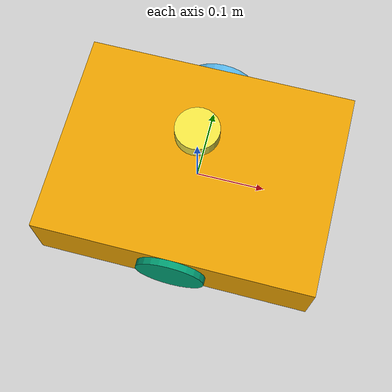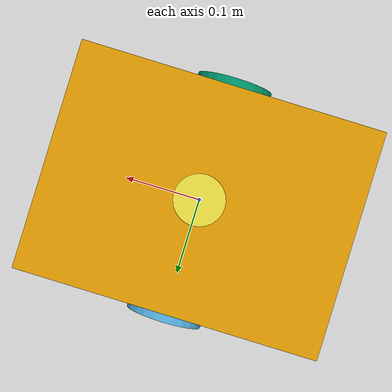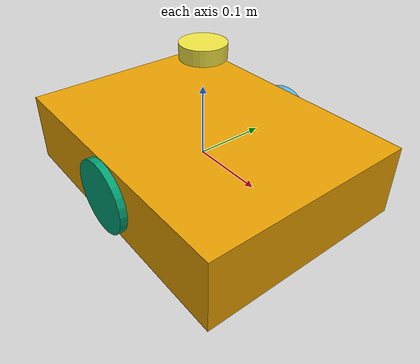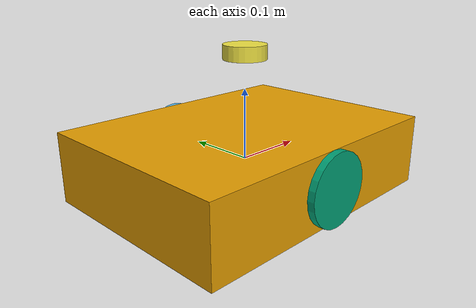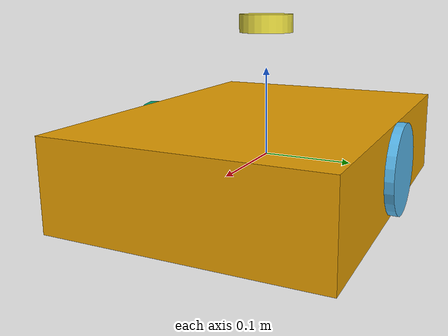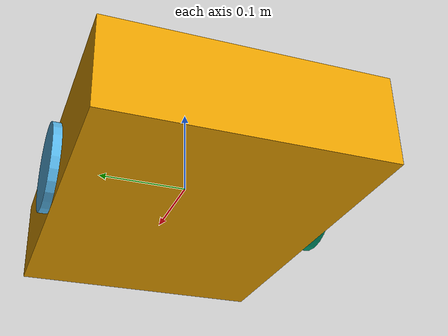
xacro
<?xml version="1.0"?>
<robot name="amr" xmlns:xacro="http://www.ros.org/wiki/xacro">

  <!-- Robot Parameters -->
  <xacro:property name="wheel_radius" value="0.05"/>
  <xacro:property name="wheel_width" value="0.02"/>
  <xacro:property name="wheel_mass" value="1.0"/>
  <xacro:property name="wheel_separation" value="0.30"/>

  <xacro:property name="lidar_height" value="0.15"/>
  <xacro:property name="lidar_range" value="12.0"/>

  <!-- Base Link -->
  <link name="base_link">
    <visual>
      <geometry>
        <box size="0.4 0.3 0.1"/>
      </geometry>
    </visual>
    <collision>
      <geometry>
        <box size="0.4 0.3 0.1"/>
      </geometry>
    </collision>
    <inertial>
      <mass value="10.0"/>
      <origin xyz="0 0 0"/>
      <inertia
        ixx="0.1" ixy="0.0" ixz="0.0"
        iyy="0.1" iyz="0.0"
        izz="0.1"/>
    </inertial>
  </link>

  <!-- Left Wheel -->
  <link name="left_wheel_link">
    <visual>
      <geometry>
        <cylinder radius="${wheel_radius}" length="${wheel_width}"/>
      </geometry>
      <origin rpy="1.5708 0 0"/>
    </visual>
    <collision>
      <geometry>
        <cylinder radius="${wheel_radius}" length="${wheel_width}"/>
      </geometry>
      <origin rpy="1.5708 0 0"/>
    </collision>
    <inertial>
      <mass value="${wheel_mass}"/>
      <inertia
        ixx="0.001" ixy="0.0" ixz="0.0"
        iyy="0.001" iyz="0.0"
        izz="0.001"/>
    </inertial>
  </link>

  <!-- Right Wheel -->
  <link name="right_wheel_link">
    <visual>
      <geometry>
        <cylinder radius="${wheel_radius}" length="${wheel_width}"/>
      </geometry>
      <origin rpy="1.5708 0 0"/>
    </visual>
    <collision>
      <geometry>
        <cylinder radius="${wheel_radius}" length="${wheel_width}"/>
      </geometry>
      <origin rpy="1.5708 0 0"/>
    </collision>
    <inertial>
      <mass value="${wheel_mass}"/>
      <inertia
        ixx="0.001" ixy="0.0" ixz="0.0"
        iyy="0.001" iyz="0.0"
        izz="0.001"/>
    </inertial>
  </link>

  <!-- LiDAR -->
  <link name="laser_link">
    <visual>
      <geometry>
        <cylinder radius="0.03" length="0.02"/>
      </geometry>
    </visual>
    <collision>
      <geometry>
        <cylinder radius="0.03" length="0.02"/>
      </geometry>
    </collision>
    <inertial>
      <mass value="0.2"/>
      <inertia
        ixx="0.0001" ixy="0.0" ixz="0.0"
        iyy="0.0001" iyz="0.0"
        izz="0.0001"/>
    </inertial>
  </link>

  <!-- Joints -->
  <joint name="left_wheel_joint" type="continuous">
    <parent link="base_link"/>
    <child link="left_wheel_link"/>
    <origin xyz="0 ${wheel_separation/2} 0"/>
    <axis xyz="0 1 0"/>
  </joint>

  <joint name="right_wheel_joint" type="continuous">
    <parent link="base_link"/>
    <child link="right_wheel_link"/>
    <origin xyz="0 -${wheel_separation/2} 0"/>
    <axis xyz="0 1 0"/>
  </joint>

  <joint name="laser_joint" type="fixed">
    <parent link="base_link"/>
    <child link="laser_link"/>
    <origin xyz="0 0 ${lidar_height}"/>
  </joint>

  <!-- Gazebo LiDAR Plugin -->
  <gazebo reference="laser_link">
    <sensor type="ray" name="lidar">
      <pose>0 0 0 0 0 0</pose>
      <update_rate>10</update_rate>

      <ray>
        <scan>
          <horizontal>
            <samples>720</samples>
            <min_angle>-3.14159</min_angle>
            <max_angle>3.14159</max_angle>
          </horizontal>
        </scan>
        <range>
          <min>0.12</min>
          <max>${lidar_range}</max>
        </range>
      </ray>

      <plugin name="gazebo_ros_ray_sensor" filename="libgazebo_ros_ray_sensor.so">
        <ros>
          <namespace>/</namespace>
          <remapping>~/out:=scan</remapping>
        </ros>
        <output_type>sensor_msgs/LaserScan</output_type>
        <frame_name>laser_link</frame_name>
      </plugin>
    </sensor>
  </gazebo>

  <!-- Gazebo Diff Drive -->
  <gazebo>
    <plugin name="diff_drive" filename="libgazebo_ros_diff_drive.so">
      <left_joint>left_wheel_joint</left_joint>
      <right_joint>right_wheel_joint</right_joint>
      <wheel_separation>${wheel_separation}</wheel_separation>
      <wheel_diameter>${wheel_radius * 2}</wheel_diameter>
      <cmd_vel_topic>cmd_vel</cmd_vel_topic>
      <odom_topic>odom</odom_topic>
      <publish_odom>true</publish_odom>
      <publish_odom_tf>true</publish_odom_tf>
      <robot_base_frame>base_link</robot_base_frame>
      <odometry_frame>odom</odometry_frame>
    </plugin>
  </gazebo>

</robot>
